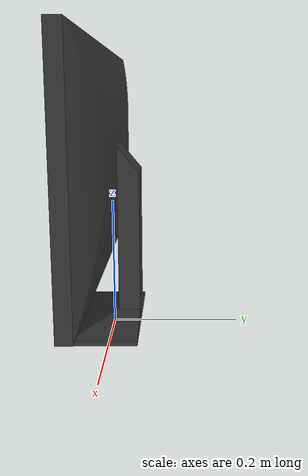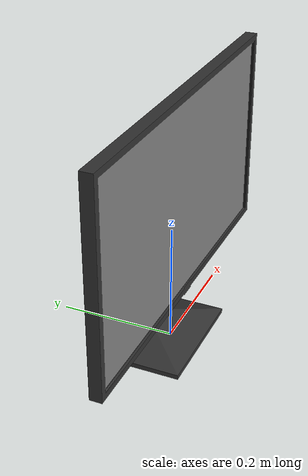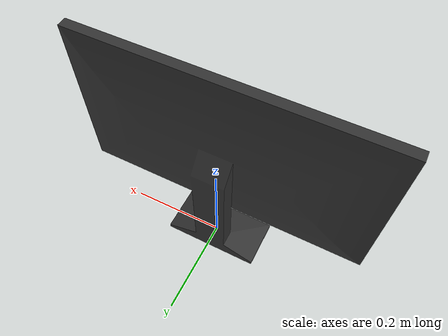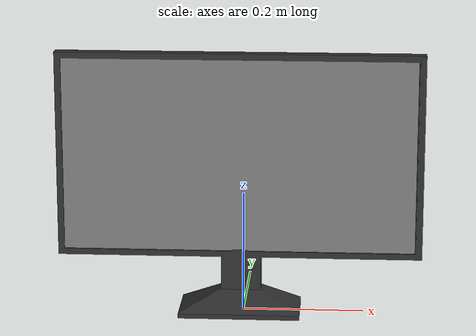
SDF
<?xml version='1.0'?>
<sdf version='1.6'>
  <model name='monitor_2'>
    <link name='link_6'>
      <pose frame=''>-0.305832 -0.059311 0 0 -0 0</pose>
       <visual name='visual'>
        <pose frame=''>0 0 0 0 -0 0</pose>
        <geometry>
          <mesh>
            <uri>model://monitor_2/meshes/frame.dae</uri>
            <scale>1 1 1</scale>
          </mesh>
        </geometry>
        <material>
          <lighting>1</lighting>
          <ambient>0 0 0 1</ambient>
          <diffuse>0.2 0.2 0.2 1</diffuse>
          <specular>0.01 0.01 0.01 1</specular>
          <emissive>0 0 0 1</emissive>
          <shader type='vertex'>
            <normal_map>__default__</normal_map>
          </shader>
        </material>
        <cast_shadows>1</cast_shadows>
        <transparency>0</transparency>
      </visual>
      <collision name='collision'>
        <laser_retro>0</laser_retro>
        <max_contacts>10</max_contacts>
        <pose frame=''>0 0 0 0 -0 0</pose>
        <geometry>
          <mesh>
            <uri>model://monitor_2/meshes/frame.dae</uri>
            <scale>1 1 1</scale>
          </mesh>
        </geometry>
       </collision>
    </link>
    <link name='link_8'>
      <pose frame=''>-0.307748 -0.058272 0 0 -0 0</pose>
       <visual name='visual'>
        <pose frame=''>0 0 0 0 -0 0</pose>
        <geometry>
          <mesh>
            <uri>model://monitor_2/meshes/screen1.dae</uri>
            <scale>1 1 1</scale>
          </mesh>
        </geometry>
     <material>
          <script>
            <uri>model://monitor_2/materials/scripts</uri>
            <uri>model://monitor_2/materials/textures</uri>
            <name>monitor_screen_2</name>
          </script>
        </material>
        <cast_shadows>1</cast_shadows>
        <transparency>0</transparency>
      </visual>
      <collision name='collision'>
        <laser_retro>0</laser_retro>
        <max_contacts>10</max_contacts>
        <pose frame=''>0 0 0 0 -0 0</pose>
        <geometry>
          <mesh>
            <uri>model://monitor_2/meshes/screen1.dae</uri>
            <scale>1 1 1</scale>
          </mesh>
        </geometry>
      </collision>
    </link>
    <static>1</static>
    <allow_auto_disable>1</allow_auto_disable>
  </model>
</sdf>
